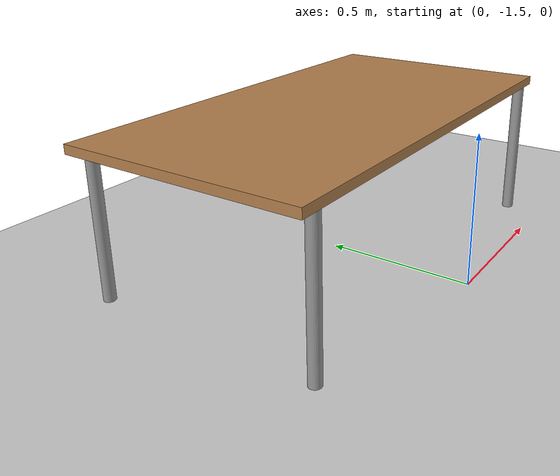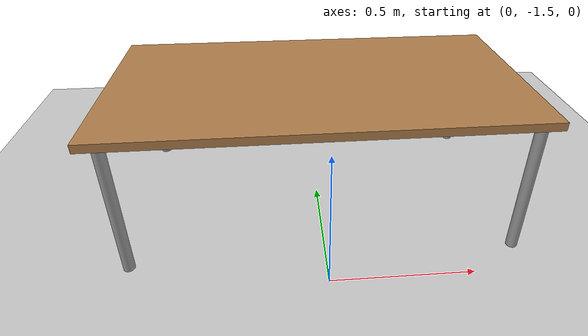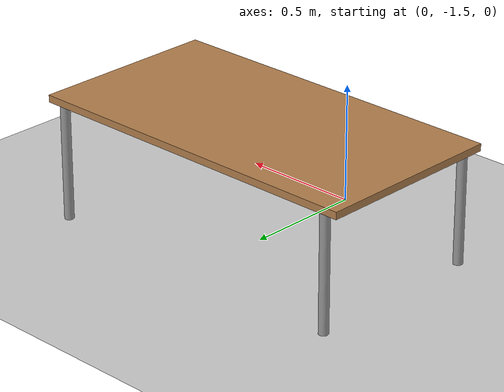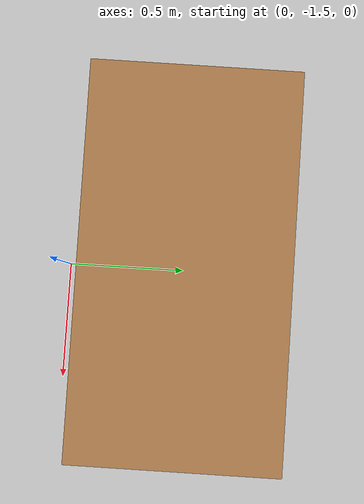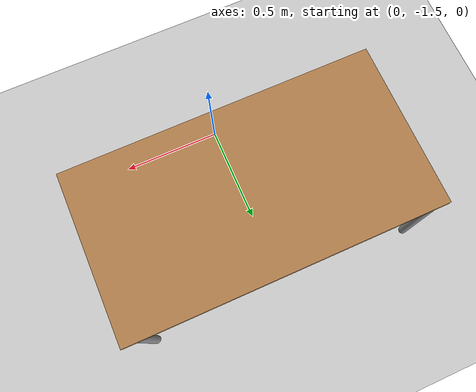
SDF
<sdf version="1.7">
 <world name="default">
  <model name="ground_plane">
   <static>1</static>
   <link name="link">
    <collision name="collision">
     <geometry><plane><normal>0 0 1</normal><size>100 100</size></plane></geometry>
     <surface><friction><ode><mu>100</mu><mu2>50</mu2></ode></friction></surface>
    </collision>
    <visual name="visual">
     <cast_shadows>0</cast_shadows>
     <geometry><plane><normal>0 0 1</normal><size>100 100</size></plane></geometry>
     <material>
      <script><uri>file://media/materials/scripts/gazebo.material</uri><name>Gazebo/Grey</name></script>
     </material>
    </visual>
   </link>
  </model>
  <light name="sun" type="directional">
   <pose>0 0 10 0 -0 0</pose>
   <diffuse>0.8 0.8 0.8 1</diffuse>
   <specular>0.2 0.2 0.2 1</specular>
   <attenuation>
    <range>1000</range>
    <constant>0.9</constant>
    <linear>0.01</linear>
    <quadratic>0.001</quadratic>
   </attenuation>
   <direction>-0.5 0.1 -0.9</direction>
   <spot><inner_angle>0</inner_angle><outer_angle>0</outer_angle><falloff>0</falloff></spot>
  </light>
  <scene><shadows>0</shadows><ambient>0.4 0.4 0.4 1</ambient><background>0.7 0.7 0.7 1</background></scene>
  <physics type="ode">
   <real_time_update_rate>1000</real_time_update_rate>
   <max_step_size>0.001</max_step_size>
   <real_time_factor>1</real_time_factor>
   <ode>
    <solver>
     <type>quick</type>
     <iters>150</iters>
     <precon_iters>0</precon_iters>
     <sor>1.4</sor>
     <use_dynamic_moi_rescaling>1</use_dynamic_moi_rescaling>
    </solver>
    <constraints>
     <cfm>1e-05</cfm>
     <erp>0.2</erp>
     <contact_max_correcting_vel>2000</contact_max_correcting_vel>
     <contact_surface_layer>0.01</contact_surface_layer>
    </constraints>
   </ode>
  </physics>
  <gravity>0 0 -9.8</gravity>
  <magnetic_field>6e-06 2.3e-05 -4.2e-05</magnetic_field>
  <atmosphere type="adiabatic"/>
  <spherical_coordinates>
   <surface_model>EARTH_WGS84</surface_model>
   <latitude_deg>0</latitude_deg>
   <longitude_deg>0</longitude_deg>
   <elevation>0</elevation>
   <heading_deg>0</heading_deg>
  </spherical_coordinates>
  <model name="table_new">
   <link name="link">
    <inertial>
     <mass>1</mass>
     <inertia><ixx>1</ixx><ixy>0</ixy><ixz>0</ixz><iyy>1</iyy><iyz>0</iyz><izz>1</izz></inertia>
    </inertial>
    <visual name="visual1">
     <pose>0 0 0.5 0 -0 0</pose>
     <geometry><box><size>1.5 0.8 0.03</size></box></geometry>
     <material>
      <script><uri>file://media/materials/scripts/gazebo.material</uri><name>Gazebo/Wood</name></script>
      <shader type="pixel"><normal_map>__default__</normal_map></shader>
      <ambient>1 1 1 1</ambient>
      <diffuse>1 1 1 1</diffuse>
      <specular>0.2 0.2 0.2 1</specular>
      <emissive>0 0 0 1</emissive>
     </material>
    </visual>
    <visual name="front_left_leg">
     <pose>0.68 0.38 0.25 0 -0 0</pose>
     <geometry><cylinder><radius>0.02</radius><length>0.5</length></cylinder></geometry>
     <material>
      <script><uri>file://media/materials/scripts/gazebo.material</uri><name>Gazebo/Grey</name></script>
      <shader type="pixel"><normal_map>__default__</normal_map></shader>
      <ambient>0.3 0.3 0.3 1</ambient>
      <diffuse>0.7 0.7 0.7 1</diffuse>
      <specular>0.01 0.01 0.01 1</specular>
      <emissive>0 0 0 1</emissive>
     </material>
    </visual>
    <visual name="back_right_leg">
     <pose>-0.68 -0.38 0.25 0 -0 0</pose>
     <geometry><cylinder><radius>0.02</radius><length>0.5</length></cylinder></geometry>
     <material>
      <script><uri>file://media/materials/scripts/gazebo.material</uri><name>Gazebo/Grey</name></script>
      <shader type="pixel"><normal_map>__default__</normal_map></shader>
      <ambient>0.3 0.3 0.3 1</ambient>
      <diffuse>0.7 0.7 0.7 1</diffuse>
      <specular>0.01 0.01 0.01 1</specular>
      <emissive>0 0 0 1</emissive>
     </material>
    </visual>
    <visual name="front_right_leg">
     <pose>0.68 -0.38 0.25 0 -0 0</pose>
     <geometry><cylinder><radius>0.02</radius><length>0.5</length></cylinder></geometry>
     <material>
      <script><uri>file://media/materials/scripts/gazebo.material</uri><name>Gazebo/Grey</name></script>
      <shader type="pixel"><normal_map>__default__</normal_map></shader>
      <ambient>0.3 0.3 0.3 1</ambient>
      <diffuse>0.7 0.7 0.7 1</diffuse>
      <specular>0.01 0.01 0.01 1</specular>
      <emissive>0 0 0 1</emissive>
     </material>
    </visual>
    <visual name="back_left_leg">
     <pose>-0.68 0.38 0.25 0 -0 0</pose>
     <geometry><cylinder><radius>0.02</radius><length>0.5</length></cylinder></geometry>
     <material>
      <script><uri>file://media/materials/scripts/gazebo.material</uri><name>Gazebo/Grey</name></script>
      <shader type="pixel"><normal_map>__default__</normal_map></shader>
      <ambient>0.3 0.3 0.3 1</ambient>
      <diffuse>0.7 0.7 0.7 1</diffuse>
      <specular>0.01 0.01 0.01 1</specular>
      <emissive>0 0 0 1</emissive>
     </material>
    </visual>
    <collision name="surface">
     <pose>0 0 1 0 -0 0</pose>
     <geometry><box><size>1.5 0.8 0.03</size></box></geometry>
     <surface>
      <friction>
       <ode><mu>0.6</mu><mu2>0.6</mu2><fdir1>0 0 0</fdir1><slip1>0</slip1><slip2>0</slip2></ode>
       <torsional>
        <coefficient>1</coefficient>
        <patch_radius>0</patch_radius>
        <surface_radius>0</surface_radius>
        <use_patch_radius>1</use_patch_radius>
        <ode><slip>0</slip></ode>
       </torsional>
      </friction>
      <bounce><restitution_coefficient>0</restitution_coefficient><threshold>1e+06</threshold></bounce>
      <contact>
       <collide_without_contact>0</collide_without_contact>
       <collide_without_contact_bitmask>1</collide_without_contact_bitmask>
       <collide_bitmask>1</collide_bitmask>
       <ode>
        <soft_cfm>0</soft_cfm>
        <soft_erp>0.2</soft_erp>
        <kp>1e+13</kp>
        <kd>1</kd>
        <max_vel>0.01</max_vel>
        <min_depth>0</min_depth>
       </ode>
       <bullet>
        <split_impulse>1</split_impulse>
        <split_impulse_penetration_threshold>-0.01</split_impulse_penetration_threshold>
        <soft_cfm>0</soft_cfm>
        <soft_erp>0.2</soft_erp>
        <kp>1e+13</kp>
        <kd>1</kd>
       </bullet>
      </contact>
     </surface>
    </collision>
    <collision name="front_left_leg">
     <pose>0.68 0.38 0.5 0 -0 0</pose>
     <geometry><cylinder><radius>0.02</radius><length>1</length></cylinder></geometry>
     <surface>
      <friction>
       <ode><mu>1</mu><mu2>1</mu2><fdir1>0 0 0</fdir1><slip1>0</slip1><slip2>0</slip2></ode>
       <torsional>
        <coefficient>1</coefficient>
        <patch_radius>0</patch_radius>
        <surface_radius>0</surface_radius>
        <use_patch_radius>1</use_patch_radius>
        <ode><slip>0</slip></ode>
       </torsional>
      </friction>
      <bounce><restitution_coefficient>0</restitution_coefficient><threshold>1e+06</threshold></bounce>
      <contact>
       <collide_without_contact>0</collide_without_contact>
       <collide_without_contact_bitmask>1</collide_without_contact_bitmask>
       <collide_bitmask>1</collide_bitmask>
       <ode>
        <soft_cfm>0</soft_cfm>
        <soft_erp>0.2</soft_erp>
        <kp>1e+13</kp>
        <kd>1</kd>
        <max_vel>0.01</max_vel>
        <min_depth>0</min_depth>
       </ode>
       <bullet>
        <split_impulse>1</split_impulse>
        <split_impulse_penetration_threshold>-0.01</split_impulse_penetration_threshold>
        <soft_cfm>0</soft_cfm>
        <soft_erp>0.2</soft_erp>
        <kp>1e+13</kp>
        <kd>1</kd>
       </bullet>
      </contact>
     </surface>
    </collision>
    <collision name="front_right_leg">
     <pose>0.68 -0.38 0.5 0 -0 0</pose>
     <geometry><cylinder><radius>0.02</radius><length>1</length></cylinder></geometry>
     <surface>
      <friction>
       <ode><mu>1</mu><mu2>1</mu2><fdir1>0 0 0</fdir1><slip1>0</slip1><slip2>0</slip2></ode>
       <torsional>
        <coefficient>1</coefficient>
        <patch_radius>0</patch_radius>
        <surface_radius>0</surface_radius>
        <use_patch_radius>1</use_patch_radius>
        <ode><slip>0</slip></ode>
       </torsional>
      </friction>
      <bounce><restitution_coefficient>0</restitution_coefficient><threshold>1e+06</threshold></bounce>
      <contact>
       <collide_without_contact>0</collide_without_contact>
       <collide_without_contact_bitmask>1</collide_without_contact_bitmask>
       <collide_bitmask>1</collide_bitmask>
       <ode>
        <soft_cfm>0</soft_cfm>
        <soft_erp>0.2</soft_erp>
        <kp>1e+13</kp>
        <kd>1</kd>
        <max_vel>0.01</max_vel>
        <min_depth>0</min_depth>
       </ode>
       <bullet>
        <split_impulse>1</split_impulse>
        <split_impulse_penetration_threshold>-0.01</split_impulse_penetration_threshold>
        <soft_cfm>0</soft_cfm>
        <soft_erp>0.2</soft_erp>
        <kp>1e+13</kp>
        <kd>1</kd>
       </bullet>
      </contact>
     </surface>
    </collision>
    <collision name="back_right_leg">
     <pose>-0.68 -0.38 0.5 0 -0 0</pose>
     <geometry><cylinder><radius>0.02</radius><length>1</length></cylinder></geometry>
     <surface>
      <friction>
       <ode><mu>1</mu><mu2>1</mu2><fdir1>0 0 0</fdir1><slip1>0</slip1><slip2>0</slip2></ode>
       <torsional>
        <coefficient>1</coefficient>
        <patch_radius>0</patch_radius>
        <surface_radius>0</surface_radius>
        <use_patch_radius>1</use_patch_radius>
        <ode><slip>0</slip></ode>
       </torsional>
      </friction>
      <bounce><restitution_coefficient>0</restitution_coefficient><threshold>1e+06</threshold></bounce>
      <contact>
       <collide_without_contact>0</collide_without_contact>
       <collide_without_contact_bitmask>1</collide_without_contact_bitmask>
       <collide_bitmask>1</collide_bitmask>
       <ode>
        <soft_cfm>0</soft_cfm>
        <soft_erp>0.2</soft_erp>
        <kp>1e+13</kp>
        <kd>1</kd>
        <max_vel>0.01</max_vel>
        <min_depth>0</min_depth>
       </ode>
       <bullet>
        <split_impulse>1</split_impulse>
        <split_impulse_penetration_threshold>-0.01</split_impulse_penetration_threshold>
        <soft_cfm>0</soft_cfm>
        <soft_erp>0.2</soft_erp>
        <kp>1e+13</kp>
        <kd>1</kd>
       </bullet>
      </contact>
     </surface>
    </collision>
    <collision name="back_left_leg">
     <pose>-0.68 0.38 0.5 0 -0 0</pose>
     <geometry><cylinder><radius>0.02</radius><length>1</length></cylinder></geometry>
     <surface>
      <friction>
       <ode><mu>1</mu><mu2>1</mu2><fdir1>0 0 0</fdir1><slip1>0</slip1><slip2>0</slip2></ode>
       <torsional>
        <coefficient>1</coefficient>
        <patch_radius>0</patch_radius>
        <surface_radius>0</surface_radius>
        <use_patch_radius>1</use_patch_radius>
        <ode><slip>0</slip></ode>
       </torsional>
      </friction>
      <bounce><restitution_coefficient>0</restitution_coefficient><threshold>1e+06</threshold></bounce>
      <contact>
       <collide_without_contact>0</collide_without_contact>
       <collide_without_contact_bitmask>1</collide_without_contact_bitmask>
       <collide_bitmask>1</collide_bitmask>
       <ode>
        <soft_cfm>0</soft_cfm>
        <soft_erp>0.2</soft_erp>
        <kp>1e+13</kp>
        <kd>1</kd>
        <max_vel>0.01</max_vel>
        <min_depth>0</min_depth>
       </ode>
       <bullet>
        <split_impulse>1</split_impulse>
        <split_impulse_penetration_threshold>-0.01</split_impulse_penetration_threshold>
        <soft_cfm>0</soft_cfm>
        <soft_erp>0.2</soft_erp>
        <kp>1e+13</kp>
        <kd>1</kd>
       </bullet>
      </contact>
     </surface>
    </collision>
   </link>
   <static>1</static>
   <pose>0 -1 0 0 -0 0</pose>
  </model>
 </world>
</sdf>
